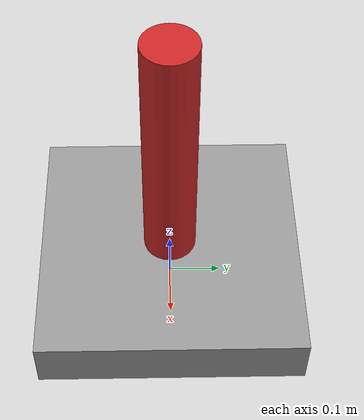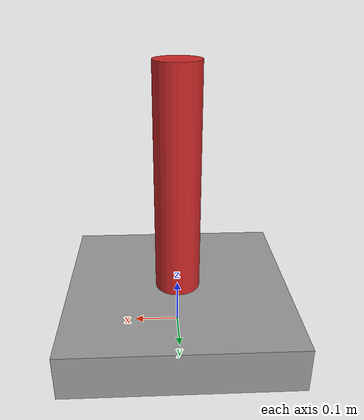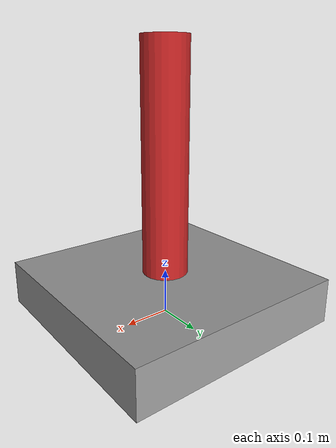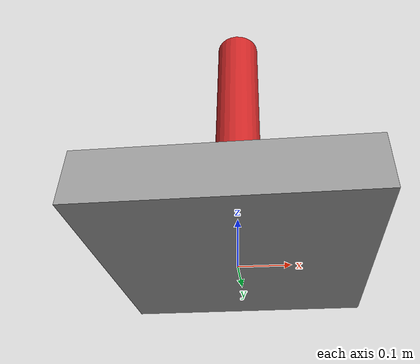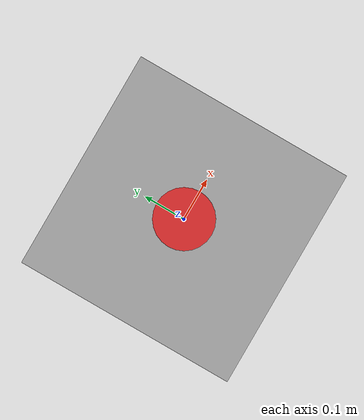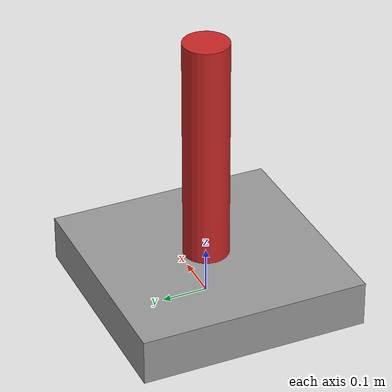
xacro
<?xml version="1.0"?>
<robot xmlns:xacro="http://www.ros.org/wiki/xacro">

    <xacro:include filename="inertial_macros.xacro" />

    <xacro:property name="base_length" value="0.5"/>
    <xacro:property name="base_width" value="0.5"/>
    <xacro:property name="base_height" value="0.1"/>
    <xacro:property name="base_mass" value="1.0"/>

    <xacro:property name="extender_length" value="0.5"/>
    <xacro:property name="extender_radius" value="0.05"/>
    <xacro:property name="extender_mass" value="0.5"/>

    <!-- Base Link -->
    <link name="base_link">
        <visual>
            <origin xyz="0 0 ${base_height/2}" rpy="0 0 0"/>
            <geometry>
                <box size="${base_length} ${base_width} ${base_height}"/>
            </geometry>
            <material name="grey"/>
        </visual>
        <collision>
            <origin xyz="0 0 ${base_height/2}" rpy="0 0 0"/>
            <geometry>
                <box size="${base_length} ${base_width} ${base_height}"/>
            </geometry>
        </collision>
        <inertial>
            <origin xyz="0 0 ${base_height/2}" rpy="0 0 0"/>
            <mass value="${base_mass}"/>
            <inertia ixx="0.1" ixy="0.0" ixz="0.0" iyy="0.1" iyz="0.0" izz="0.1"/>
        </inertial>
    </link>

    <!-- Extender Link -->
    <joint name="joint1" type="revolute">
        <parent link="base_link"/>
        <child link="extender"/>
        <origin xyz="0 0 ${base_height}" rpy="0 0 0"/>
        <axis xyz="0 0 1"/>
        <limit effort="1000.0" lower="-1.57" upper="1.57" velocity="1.0"/>
    </joint>
    <link name="extender">
        <visual>
            <origin xyz="0 0 ${extender_length/2}" rpy="0 0 0"/>
            <geometry>
                <cylinder length="${extender_length}" radius="${extender_radius}"/>
            </geometry>
            <material name="red"/>
        </visual>
        <collision>
            <origin xyz="0 0 ${extender_length/2}" rpy="0 0 0"/>
            <geometry>
                <cylinder length="${extender_length}" radius="${extender_radius}"/>
            </geometry>
        </collision>
        <inertial>
            <origin xyz="0 0 ${extender_length/2}" rpy="0 0 0"/>
            <mass value="${extender_mass}"/>
            <inertia ixx="0.1" ixy="0.0" ixz="0.0" iyy="0.1" iyz="0.0" izz="0.1"/>
        </inertial>
    </link>

</robot>
